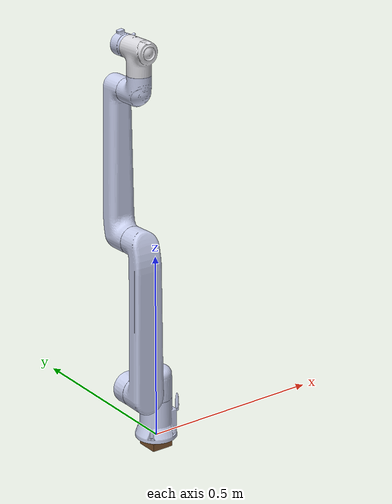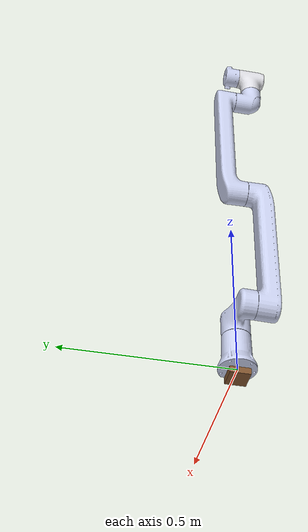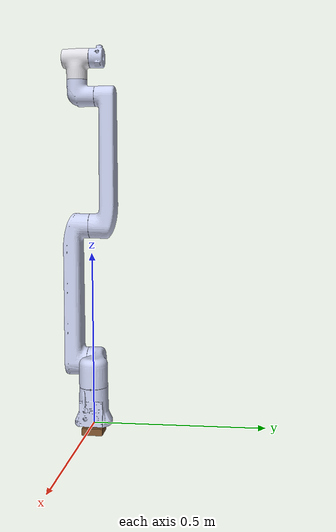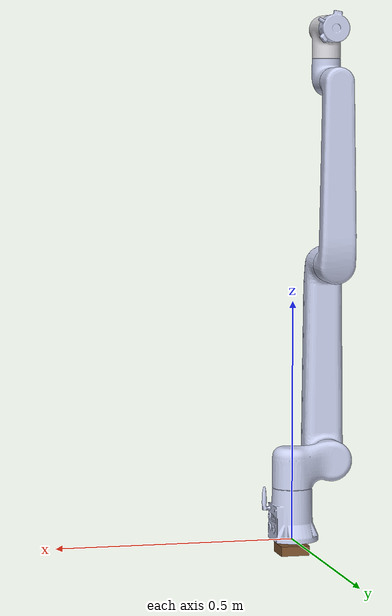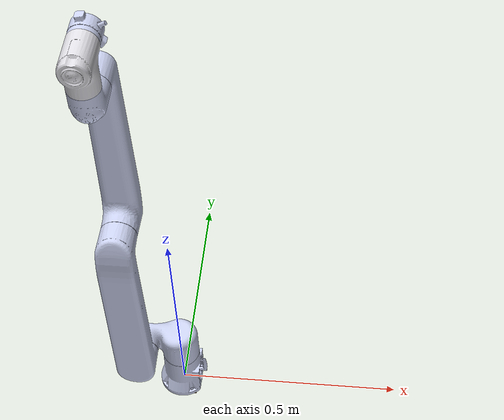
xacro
<?xml version="1.0" encoding="utf-8"?>
<robot  name="rm_eco63" xmlns:xacro="http://www.ros.org/wiki/xacro">
<xacro:include filename="$(find rm_description)/urdf/ECO63/rm_eco63.transmission.xacro"/>
<xacro:include filename="$(find rm_description)/urdf/ECO63/rm_eco63.gazebo.xacro"/>
  <!-- Inertial matrix -->
<xacro:macro name="inertial_matrix" params="mass">
<inertial>
    <mass value="${mass}" />
    <inertia ixx="1.0" ixy="0.0" ixz="0.0" iyy="0.5" iyz="0.0" izz="1.0" />
</inertial>
</xacro:macro>
 <xacro:macro name="Box_inertial_matrix" params="m l w h">
       <inertial>
               <mass value="${m}" />
               <inertia ixx="${m*(h*h + l*l)/12}" ixy = "0" ixz = "0"
                   iyy="${m*(w*w + l*l)/12}" iyz= "0"
                   izz="${m*(w*w + h*h)/12}" />
       </inertial>
  </xacro:macro>

    <link name="dummy">
    </link>
    <joint name="dummy_joint" type="fixed">
      <parent link="dummy" />
      <child link="base_link" />
    </joint>

  <!-- ///////////////////////////////////////   bottom_joint   ////////////////////////////////////////// -->
  <joint name="bottom_joint" type="fixed">
    <origin xyz="0 0 0" rpy="0 0 0" />
    <parent link="base_link"/>
    <child link="bottom_link"/>
  </joint>
  <link name="bottom_link">
    <visual>
      <origin xyz=" 0 0 -0.02"  rpy="0 0 0"/>
      <geometry>
        <box size="0.06 0.06 0.02" />
      </geometry>
      <material name="Brown" />
    </visual>
    <collision>
      <origin xyz=" 0 0 -0.02"  rpy="0 0 0"/>
      <geometry>
        <box size="0.06 0.06 0.02" />
      </geometry>
    </collision>
    <xacro:Box_inertial_matrix m="500" l="1" w="1" h="0.02"/>
  </link>

  <link
    name="base_link">
    <inertial>
      <origin
        xyz="0.00039308 -8.9311E-05 0.050351"
        rpy="0 0 0" />
      <mass
        value="0.70684" />
      <inertia
        ixx="0.001114"
        ixy="3.3208E-06"
        ixz="-2.5536E-05"
        iyy="0.0011138"
        iyz="1.4832E-06"
        izz="0.00075793" />
    </inertial>
    <visual>
      <origin
        xyz="0 0 0"
        rpy="0 0 0" />
      <geometry>
        <mesh
          filename="package://rm_description/meshes/ECO63/base_link.STL" />
      </geometry>
      <material
        name="">
        <color
          rgba="0.79216 0.81961 0.93333 1" />
      </material>
    </visual>
    <collision>
      <origin
        xyz="0 0 0"
        rpy="0 0 0" />
      <geometry>
        <mesh
          filename="package://rm_description/meshes/ECO63/base_link.STL" />
      </geometry>
    </collision>
  </link>
  <link
    name="Link1">
    <inertial>
      <origin
        xyz="-0.032161 -0.002588 -0.0071715"
        rpy="0 0 0" />
      <mass
        value="0.7339" />
      <inertia
        ixx="0.00065754"
        ixy="-0.00012029"
        ixz="0.00016575"
        iyy="0.0018838"
        iyz="1.5479E-05"
        izz="0.0017351" />
    </inertial>
    <visual>
      <origin
        xyz="0 0 0"
        rpy="0 0 0" />
      <geometry>
        <mesh
          filename="package://rm_description/meshes/ECO63/Link1.STL" />
      </geometry>
      <material
        name="">
        <color
          rgba="0.79216 0.81961 0.93333 1" />
      </material>
    </visual>
    <collision>
      <origin
        xyz="0 0 0"
        rpy="0 0 0" />
      <geometry>
        <mesh
          filename="package://rm_description/meshes/ECO63/Link1.STL" />
      </geometry>
    </collision>
  </link>
  <joint
    name="joint1"
    type="revolute">
    <origin
      xyz="0 0 0.1625"
      rpy="0 0 0" />
    <parent
      link="base_link" />
    <child
      link="Link1" />
    <axis
      xyz="0 0 1" />
    <limit
      lower="-3.1"
      upper="3.1"
      effort="100"
      velocity="1" />
      <dynamics
      damping="50"
      friction="1" />
  </joint>
  <link
    name="Link2">
    <inertial>
      <origin
        xyz="0.19469 6.6139E-07 -0.070874"
        rpy="0 0 0" />
      <mass
        value="1.9492" />
      <inertia
        ixx="0.001497"
        ixy="1.4887E-07"
        ixz="-0.00045122"
        iyy="0.040644"
        iyz="1.3757E-08"
        izz="0.040997" />
    </inertial>
    <visual>
      <origin
        xyz="0 0 0"
        rpy="0 0 0" />
      <geometry>
        <mesh
          filename="package://rm_description/meshes/ECO63/Link2.STL" />
      </geometry>
      <material
        name="">
        <color
          rgba="0.79216 0.81961 0.93333 1" />
      </material>
    </visual>
    <collision>
      <origin
        xyz="0 0 0"
        rpy="0 0 0" />
      <geometry>
        <mesh
          filename="package://rm_description/meshes/ECO63/Link2.STL" />
      </geometry>
    </collision>
  </link>
  <joint
    name="joint2"
    type="revolute">
    <origin
      xyz="-0.086 0 0"
      rpy="-1.5708 -1.5708 0" />
    <parent
      link="Link1" />
    <child
      link="Link2" />
    <axis
      xyz="0 0 1" />
    <limit
      lower="-3.1"
      upper="3.1"
      effort="100"
      velocity="1" />
      <dynamics
      damping="50"
      friction="1" />
  </joint>
  <link
    name="Link3">
    <inertial>
      <origin
        xyz="0.1718 6.3595E-07 0.026691"
        rpy="0 0 0" />
      <mass
        value="1.4553" />
      <inertia
        ixx="0.00094612"
        ixy="-1.1572E-07"
        ixz="-0.0008623"
        iyy="0.025574"
        iyz="-2.426E-08"
        izz="0.025646" />
    </inertial>
    <visual>
      <origin
        xyz="0 0 0"
        rpy="0 0 0" />
      <geometry>
        <mesh
          filename="package://rm_description/meshes/ECO63/Link3.STL" />
      </geometry>
      <material
        name="">
        <color
          rgba="0.79216 0.81961 0.93333 1" />
      </material>
    </visual>
    <collision>
      <origin
        xyz="0 0 0"
        rpy="0 0 0" />
      <geometry>
        <mesh
          filename="package://rm_description/meshes/ECO63/Link3.STL" />
      </geometry>
    </collision>
  </link>
  <joint
    name="joint3"
    type="revolute">
    <origin
      xyz="0.41 0 0"
      rpy="0 0 0" />
    <parent
      link="Link2" />
    <child
      link="Link3" />
    <axis
      xyz="0 0 1" />
    <limit
      lower="-2.95"
      upper="2.76"
      effort="100"
      velocity="1" />
    <dynamics
      damping="50"
      friction="1" />
  </joint>
  <link
    name="Link4">
    <inertial>
      <origin
        xyz="6.6185E-07 -0.0098798 0.013446"
        rpy="0 0 0" />
      <mass
        value="0.27261" />
      <inertia
        ixx="0.00023835"
        ixy="2.6006E-09"
        ixz="-2.5717E-09"
        iyy="0.00019072"
        iyz="-4.0013E-05"
        izz="0.0001713" />
    </inertial>
    <visual>
      <origin
        xyz="0 0 0"
        rpy="0 0 0" />
      <geometry>
        <mesh
          filename="package://rm_description/meshes/ECO63/Link4.STL" />
      </geometry>
      <material
        name="">
        <color
          rgba="0.79216 0.81961 0.93333 1" />
      </material>
    </visual>
    <collision>
      <origin
        xyz="0 0 0"
        rpy="0 0 0" />
      <geometry>
        <mesh
          filename="package://rm_description/meshes/ECO63/Link4.STL" />
      </geometry>
    </collision>
  </link>
  <joint
    name="joint4"
    type="revolute">
    <origin
      xyz="0.38 0 -0.0589"
      rpy="0 0 1.5708" />
    <parent
      link="Link3" />
    <child
      link="Link4" />
    <axis
      xyz="0 0 1" />
    <limit
      lower="-2.44"
      upper="2.44"
      effort="100"
      velocity="1" />
    <dynamics
      damping="50"
      friction="1" />
  </joint>
  <link
    name="Link5">
    <inertial>
      <origin
        xyz="-3.0395E-07 7.9935E-05 -0.014767"
        rpy="0 0 0" />
      <mass
        value="0.31149" />
      <inertia
        ixx="0.00030885"
        ixy="-5.8024E-09"
        ixz="3.5085E-09"
        iyy="0.00024407"
        iyz="-2.2834E-06"
        izz="0.0002027" />
    </inertial>
    <visual>
      <origin
        xyz="0 0 0"
        rpy="0 0 0" />
      <geometry>
        <mesh
          filename="package://rm_description/meshes/ECO63/Link5.STL" />
      </geometry>
      <material
        name="">
        <color
          rgba="0.86667 0.86667 0.8902 1" />
      </material>
    </visual>
    <collision>
      <origin
        xyz="0 0 0"
        rpy="0 0 0" />
      <geometry>
        <mesh
          filename="package://rm_description/meshes/ECO63/Link5.STL" />
      </geometry>
    </collision>
  </link>
  <joint
    name="joint5"
    type="revolute">
    <origin
      xyz="0 -0.11 0"
      rpy="1.5708 0 0" />
    <parent
      link="Link4" />
    <child
      link="Link5" />
    <axis
      xyz="0 0 1" />
    <limit
      lower="-3.14"
      upper="3.14"
      effort="100"
      velocity="1" />
    <dynamics
      damping="50"
      friction="1" />
  </joint>
  <link
    name="Link6">
    <inertial>
      <origin
        xyz="0.00065547 -0.00036962 -0.015297"
        rpy="0 0 0" />
      <mass
        value="0.080797" />
      <inertia
        ixx="0"
        ixy="0"
        ixz="0"
        iyy="0"
        iyz="0"
        izz="0" />
    </inertial>
    <visual>
      <origin
        xyz="0 0 0"
        rpy="0 0 0" />
      <geometry>
        <mesh
          filename="package://rm_description/meshes/ECO63/Link6.STL" />
      </geometry>
      <material
        name="">
        <color
          rgba="0.79216 0.81961 0.93333 1" />
      </material>
    </visual>
    <collision>
      <origin
        xyz="0 0 0"
        rpy="0 0 0" />
      <geometry>
        <mesh
          filename="package://rm_description/meshes/ECO63/Link6.STL" />
      </geometry>
    </collision>
  </link>
  <joint
    name="joint6"
    type="revolute">
    <origin
      xyz="0 0.079501 0"
      rpy="-1.5708 0 0" />
    <parent
      link="Link5" />
    <child
      link="Link6" />
    <axis
      xyz="0 0 1" />
    <limit
      lower="-6.28"
      upper="6.28"
      effort="100"
      velocity="1" />
    <dynamics
      damping="50"
      friction="1" />
  </joint>
    <!-- Transmissions for ROS Control -->
  <xacro:macro name="transmission_block" params="joint_name">
    <transmission name="tran1">
      <type>transmission_interface/SimpleTransmission</type>
      <joint name="${joint_name}">
        <hardwareInterface>hardware_interface/PositionJointInterface</hardwareInterface>
      </joint>
      <actuator name="motor1">
        <hardwareInterface>hardware_interface/PositionJointInterface</hardwareInterface>
        <mechanicalReduction>1</mechanicalReduction>
      </actuator>
    </transmission>
  </xacro:macro>

  <xacro:transmission_block joint_name="joint1"/>
  <xacro:transmission_block joint_name="joint2"/>
  <xacro:transmission_block joint_name="joint3"/>
  <xacro:transmission_block joint_name="joint4"/>
  <xacro:transmission_block joint_name="joint5"/>
  <xacro:transmission_block joint_name="joint6"/>

  <!-- ros_control plugin -->
  <gazebo>
    <plugin name="gazebo_ros_control" filename="libgazebo_ros_control.so">
      <robotNamespace>/arm</robotNamespace>
      <robotSimType>gazebo_ros_control/DefaultRobotHWSim</robotSimType>
      <legacyModeNS>true</legacyModeNS>
    </plugin>
  </gazebo>
</robot>
